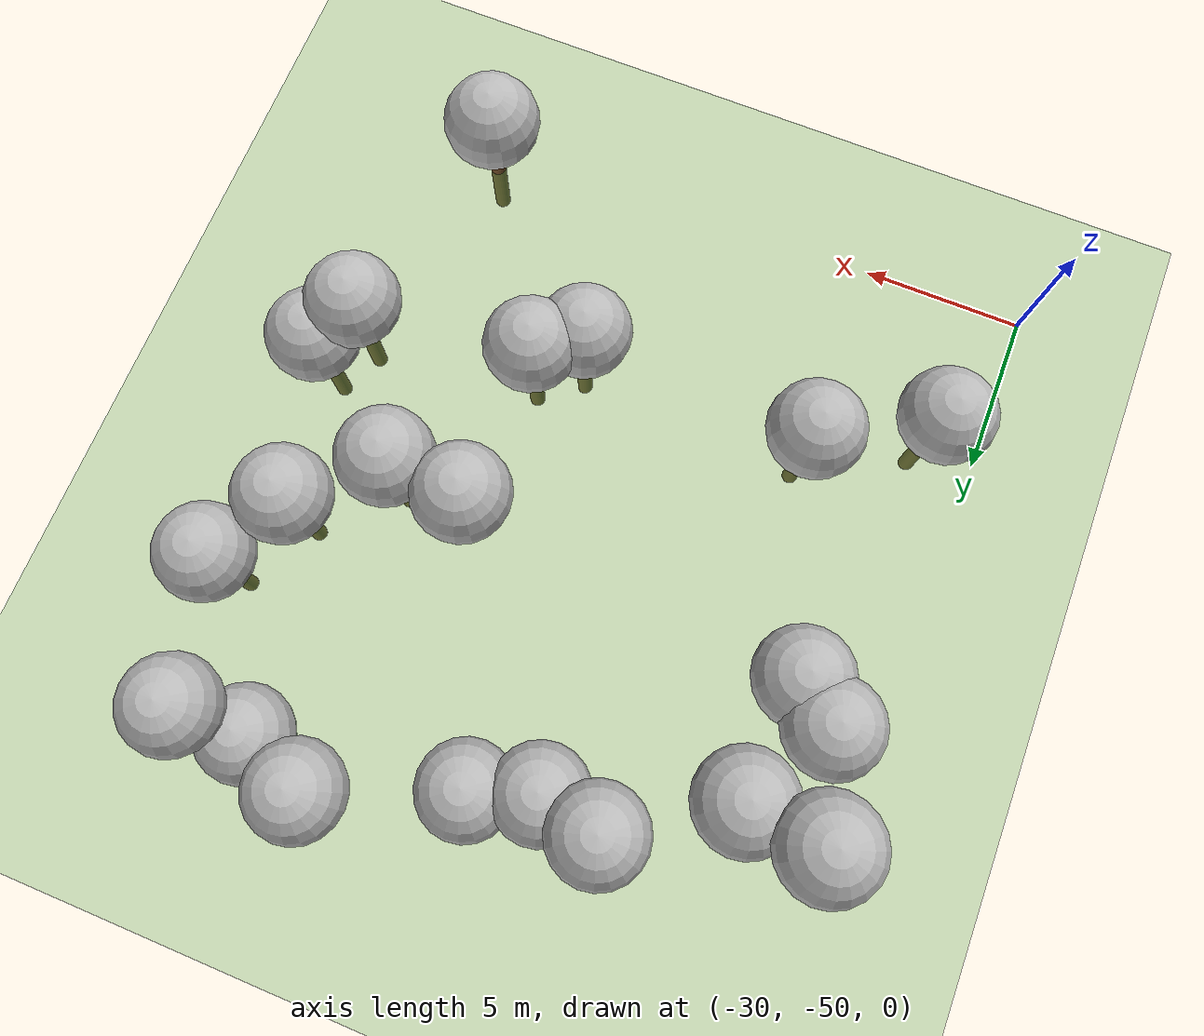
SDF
<sdf version="1.7">
 <world name="default">
  <model name="tree_simple491">
   <static>1</static>
   <link name="link">
    <pose>0 0 0.1 0 -0 0</pose>
    <collision name="collision_trunk">
     <pose>0 0 2 0 -0 0</pose>
     <geometry><cylinder><radius>0.25</radius><length>4</length></cylinder></geometry>
    </collision>
    <collision name="collision_treetop">
     <pose>0 0 5.2 0 -0 0</pose>
     <geometry><sphere><radius>1.5</radius></sphere></geometry>
    </collision>
    <visual name="trunk">
     <pose>0 0 2 0 -0 0</pose>
     <geometry><cylinder><radius>0.25</radius><length>4</length></cylinder></geometry>
     <material>
      <script>
       <uri>model://tree_simple/scripts</uri>
       <uri>model://tree_simple/materials/textures</uri>
       <name>TreeSimple/Trunk</name>
      </script>
     </material>
    </visual>
    <visual name="treetop">
     <pose>0 0 5.2 0 -0 0</pose>
     <geometry><sphere><radius>1.5</radius></sphere></geometry>
     <material>
      <script>
       <uri>model://tree_simple/scripts</uri>
       <uri>model://tree_simple/materials/textures</uri>
       <name>TreeSimple/Treetop</name>
      </script>
     </material>
    </visual>
   </link>
   <pose>-12.3902 -49.1083 -2.42305 0 -0 0</pose>
  </model>
  <model name="tree_simple433">
   <static>1</static>
   <link name="link">
    <pose>0 0 0.1 0 -0 0</pose>
    <collision name="collision_trunk">
     <pose>0 0 2 0 -0 0</pose>
     <geometry><cylinder><radius>0.25</radius><length>4</length></cylinder></geometry>
    </collision>
    <collision name="collision_treetop">
     <pose>0 0 5.2 0 -0 0</pose>
     <geometry><sphere><radius>1.5</radius></sphere></geometry>
    </collision>
    <visual name="trunk">
     <pose>0 0 2 0 -0 0</pose>
     <geometry><cylinder><radius>0.25</radius><length>4</length></cylinder></geometry>
     <material>
      <script>
       <uri>model://tree_simple/scripts</uri>
       <uri>model://tree_simple/materials/textures</uri>
       <name>TreeSimple/Trunk</name>
      </script>
     </material>
    </visual>
    <visual name="treetop">
     <pose>0 0 5.2 0 -0 0</pose>
     <geometry><sphere><radius>1.5</radius></sphere></geometry>
     <material>
      <script>
       <uri>model://tree_simple/scripts</uri>
       <uri>model://tree_simple/materials/textures</uri>
       <name>TreeSimple/Treetop</name>
      </script>
     </material>
    </visual>
   </link>
   <pose>-27.0164 -36.6076 -3.02726 0 -0 0</pose>
  </model>
  <model name="tree_simple408">
   <static>1</static>
   <link name="link">
    <pose>0 0 0.1 0 -0 0</pose>
    <collision name="collision_trunk">
     <pose>0 0 2 0 -0 0</pose>
     <geometry><cylinder><radius>0.25</radius><length>4</length></cylinder></geometry>
    </collision>
    <collision name="collision_treetop">
     <pose>0 0 5.2 0 -0 0</pose>
     <geometry><sphere><radius>1.5</radius></sphere></geometry>
    </collision>
    <visual name="trunk">
     <pose>0 0 2 0 -0 0</pose>
     <geometry><cylinder><radius>0.25</radius><length>4</length></cylinder></geometry>
     <material>
      <script>
       <uri>model://tree_simple/scripts</uri>
       <uri>model://tree_simple/materials/textures</uri>
       <name>TreeSimple/Trunk</name>
      </script>
     </material>
    </visual>
    <visual name="treetop">
     <pose>0 0 5.2 0 -0 0</pose>
     <geometry><sphere><radius>1.5</radius></sphere></geometry>
     <material>
      <script>
       <uri>model://tree_simple/scripts</uri>
       <uri>model://tree_simple/materials/textures</uri>
       <name>TreeSimple/Treetop</name>
      </script>
     </material>
    </visual>
   </link>
   <pose>-16.0994 -43.1532 -3.70688 0 -0 0</pose>
  </model>
  <model name="tree_simple397">
   <static>1</static>
   <link name="link">
    <pose>0 0 0.1 0 -0 0</pose>
    <collision name="collision_trunk">
     <pose>0 0 2 0 -0 0</pose>
     <geometry><cylinder><radius>0.25</radius><length>4</length></cylinder></geometry>
    </collision>
    <collision name="collision_treetop">
     <pose>0 0 5.2 0 -0 0</pose>
     <geometry><sphere><radius>1.5</radius></sphere></geometry>
    </collision>
    <visual name="trunk">
     <pose>0 0 2 0 -0 0</pose>
     <geometry><cylinder><radius>0.25</radius><length>4</length></cylinder></geometry>
     <material>
      <script>
       <uri>model://tree_simple/scripts</uri>
       <uri>model://tree_simple/materials/textures</uri>
       <name>TreeSimple/Trunk</name>
      </script>
     </material>
    </visual>
    <visual name="treetop">
     <pose>0 0 5.2 0 -0 0</pose>
     <geometry><sphere><radius>1.5</radius></sphere></geometry>
     <material>
      <script>
       <uri>model://tree_simple/scripts</uri>
       <uri>model://tree_simple/materials/textures</uri>
       <name>TreeSimple/Treetop</name>
      </script>
     </material>
    </visual>
   </link>
   <pose>-11.3371 -35.9987 -3.01641 0 -0 0</pose>
  </model>
  <model name="tree_simple382">
   <static>1</static>
   <link name="link">
    <pose>0 0 0.1 0 -0 0</pose>
    <collision name="collision_trunk">
     <pose>0 0 2 0 -0 0</pose>
     <geometry><cylinder><radius>0.25</radius><length>4</length></cylinder></geometry>
    </collision>
    <collision name="collision_treetop">
     <pose>0 0 5.2 0 -0 0</pose>
     <geometry><sphere><radius>1.5</radius></sphere></geometry>
    </collision>
    <visual name="trunk">
     <pose>0 0 2 0 -0 0</pose>
     <geometry><cylinder><radius>0.25</radius><length>4</length></cylinder></geometry>
     <material>
      <script>
       <uri>model://tree_simple/scripts</uri>
       <uri>model://tree_simple/materials/textures</uri>
       <name>TreeSimple/Trunk</name>
      </script>
     </material>
    </visual>
    <visual name="treetop">
     <pose>0 0 5.2 0 -0 0</pose>
     <geometry><sphere><radius>1.5</radius></sphere></geometry>
     <material>
      <script>
       <uri>model://tree_simple/scripts</uri>
       <uri>model://tree_simple/materials/textures</uri>
       <name>TreeSimple/Treetop</name>
      </script>
     </material>
    </visual>
   </link>
   <pose>-13.734 -38.0385 -2.58728 0 -0 0</pose>
  </model>
  <model name="tree_simple371">
   <static>1</static>
   <link name="link">
    <pose>0 0 0.1 0 -0 0</pose>
    <collision name="collision_trunk">
     <pose>0 0 2 0 -0 0</pose>
     <geometry><cylinder><radius>0.25</radius><length>4</length></cylinder></geometry>
    </collision>
    <collision name="collision_treetop">
     <pose>0 0 5.2 0 -0 0</pose>
     <geometry><sphere><radius>1.5</radius></sphere></geometry>
    </collision>
    <visual name="trunk">
     <pose>0 0 2 0 -0 0</pose>
     <geometry><cylinder><radius>0.25</radius><length>4</length></cylinder></geometry>
     <material>
      <script>
       <uri>model://tree_simple/scripts</uri>
       <uri>model://tree_simple/materials/textures</uri>
       <name>TreeSimple/Trunk</name>
      </script>
     </material>
    </visual>
    <visual name="treetop">
     <pose>0 0 5.2 0 -0 0</pose>
     <geometry><sphere><radius>1.5</radius></sphere></geometry>
     <material>
      <script>
       <uri>model://tree_simple/scripts</uri>
       <uri>model://tree_simple/materials/textures</uri>
       <name>TreeSimple/Treetop</name>
      </script>
     </material>
    </visual>
   </link>
   <pose>-15.0952 -28.6085 -3.71926 0 -0 0</pose>
  </model>
  <model name="tree_simple357">
   <static>1</static>
   <link name="link">
    <pose>0 0 0.1 0 -0 0</pose>
    <collision name="collision_trunk">
     <pose>0 0 2 0 -0 0</pose>
     <geometry><cylinder><radius>0.25</radius><length>4</length></cylinder></geometry>
    </collision>
    <collision name="collision_treetop">
     <pose>0 0 5.2 0 -0 0</pose>
     <geometry><sphere><radius>1.5</radius></sphere></geometry>
    </collision>
    <visual name="trunk">
     <pose>0 0 2 0 -0 0</pose>
     <geometry><cylinder><radius>0.25</radius><length>4</length></cylinder></geometry>
     <material>
      <script>
       <uri>model://tree_simple/scripts</uri>
       <uri>model://tree_simple/materials/textures</uri>
       <name>TreeSimple/Trunk</name>
      </script>
     </material>
    </visual>
    <visual name="treetop">
     <pose>0 0 5.2 0 -0 0</pose>
     <geometry><sphere><radius>1.5</radius></sphere></geometry>
     <material>
      <script>
       <uri>model://tree_simple/scripts</uri>
       <uri>model://tree_simple/materials/textures</uri>
       <name>TreeSimple/Treetop</name>
      </script>
     </material>
    </visual>
   </link>
   <pose>-28.5405 -45.5661 -3.47704 0 -0 0</pose>
  </model>
  <model name="tree_simple305">
   <static>1</static>
   <link name="link">
    <pose>0 0 0.1 0 -0 0</pose>
    <collision name="collision_trunk">
     <pose>0 0 2 0 -0 0</pose>
     <geometry><cylinder><radius>0.25</radius><length>4</length></cylinder></geometry>
    </collision>
    <collision name="collision_treetop">
     <pose>0 0 5.2 0 -0 0</pose>
     <geometry><sphere><radius>1.5</radius></sphere></geometry>
    </collision>
    <visual name="trunk">
     <pose>0 0 2 0 -0 0</pose>
     <geometry><cylinder><radius>0.25</radius><length>4</length></cylinder></geometry>
     <material>
      <script>
       <uri>model://tree_simple/scripts</uri>
       <uri>model://tree_simple/materials/textures</uri>
       <name>TreeSimple/Trunk</name>
      </script>
     </material>
    </visual>
    <visual name="treetop">
     <pose>0 0 5.2 0 -0 0</pose>
     <geometry><sphere><radius>1.5</radius></sphere></geometry>
     <material>
      <script>
       <uri>model://tree_simple/scripts</uri>
       <uri>model://tree_simple/materials/textures</uri>
       <name>TreeSimple/Treetop</name>
      </script>
     </material>
    </visual>
   </link>
   <pose>-16.225 -37.8227 -2.40107 0 -0 0</pose>
  </model>
  <model name="tree_simple262">
   <static>1</static>
   <link name="link">
    <pose>0 0 0.1 0 -0 0</pose>
    <collision name="collision_trunk">
     <pose>0 0 2 0 -0 0</pose>
     <geometry><cylinder><radius>0.25</radius><length>4</length></cylinder></geometry>
    </collision>
    <collision name="collision_treetop">
     <pose>0 0 5.2 0 -0 0</pose>
     <geometry><sphere><radius>1.5</radius></sphere></geometry>
    </collision>
    <visual name="trunk">
     <pose>0 0 2 0 -0 0</pose>
     <geometry><cylinder><radius>0.25</radius><length>4</length></cylinder></geometry>
     <material>
      <script>
       <uri>model://tree_simple/scripts</uri>
       <uri>model://tree_simple/materials/textures</uri>
       <name>TreeSimple/Trunk</name>
      </script>
     </material>
    </visual>
    <visual name="treetop">
     <pose>0 0 5.2 0 -0 0</pose>
     <geometry><sphere><radius>1.5</radius></sphere></geometry>
     <material>
      <script>
       <uri>model://tree_simple/scripts</uri>
       <uri>model://tree_simple/materials/textures</uri>
       <name>TreeSimple/Treetop</name>
      </script>
     </material>
    </visual>
   </link>
   <pose>-23.2561 -30.6191 -3.21927 0 -0 0</pose>
  </model>
  <model name="tree_simple257">
   <static>1</static>
   <link name="link">
    <pose>0 0 0.1 0 -0 0</pose>
    <collision name="collision_trunk">
     <pose>0 0 2 0 -0 0</pose>
     <geometry><cylinder><radius>0.25</radius><length>4</length></cylinder></geometry>
    </collision>
    <collision name="collision_treetop">
     <pose>0 0 5.2 0 -0 0</pose>
     <geometry><sphere><radius>1.5</radius></sphere></geometry>
    </collision>
    <visual name="trunk">
     <pose>0 0 2 0 -0 0</pose>
     <geometry><cylinder><radius>0.25</radius><length>4</length></cylinder></geometry>
     <material>
      <script>
       <uri>model://tree_simple/scripts</uri>
       <uri>model://tree_simple/materials/textures</uri>
       <name>TreeSimple/Trunk</name>
      </script>
     </material>
    </visual>
    <visual name="treetop">
     <pose>0 0 5.2 0 -0 0</pose>
     <geometry><sphere><radius>1.5</radius></sphere></geometry>
     <material>
      <script>
       <uri>model://tree_simple/scripts</uri>
       <uri>model://tree_simple/materials/textures</uri>
       <name>TreeSimple/Treetop</name>
      </script>
     </material>
    </visual>
   </link>
   <pose>-17.4077 -44.2765 -4.02978 0 -0 0</pose>
  </model>
  <model name="tree_simple227">
   <static>1</static>
   <link name="link">
    <pose>0 0 0.1 0 -0 0</pose>
    <collision name="collision_trunk">
     <pose>0 0 2 0 -0 0</pose>
     <geometry><cylinder><radius>0.25</radius><length>4</length></cylinder></geometry>
    </collision>
    <collision name="collision_treetop">
     <pose>0 0 5.2 0 -0 0</pose>
     <geometry><sphere><radius>1.5</radius></sphere></geometry>
    </collision>
    <visual name="trunk">
     <pose>0 0 2 0 -0 0</pose>
     <geometry><cylinder><radius>0.25</radius><length>4</length></cylinder></geometry>
     <material>
      <script>
       <uri>model://tree_simple/scripts</uri>
       <uri>model://tree_simple/materials/textures</uri>
       <name>TreeSimple/Trunk</name>
      </script>
     </material>
    </visual>
    <visual name="treetop">
     <pose>0 0 5.2 0 -0 0</pose>
     <geometry><sphere><radius>1.5</radius></sphere></geometry>
     <material>
      <script>
       <uri>model://tree_simple/scripts</uri>
       <uri>model://tree_simple/materials/textures</uri>
       <name>TreeSimple/Treetop</name>
      </script>
     </material>
    </visual>
   </link>
   <pose>-10.5932 -42.325 -3.24332 0 -0 0</pose>
  </model>
  <model name="tree_simple198">
   <static>1</static>
   <link name="link">
    <pose>0 0 0.1 0 -0 0</pose>
    <collision name="collision_trunk">
     <pose>0 0 2 0 -0 0</pose>
     <geometry><cylinder><radius>0.25</radius><length>4</length></cylinder></geometry>
    </collision>
    <collision name="collision_treetop">
     <pose>0 0 5.2 0 -0 0</pose>
     <geometry><sphere><radius>1.5</radius></sphere></geometry>
    </collision>
    <visual name="trunk">
     <pose>0 0 2 0 -0 0</pose>
     <geometry><cylinder><radius>0.25</radius><length>4</length></cylinder></geometry>
     <material>
      <script>
       <uri>model://tree_simple/scripts</uri>
       <uri>model://tree_simple/materials/textures</uri>
       <name>TreeSimple/Trunk</name>
      </script>
     </material>
    </visual>
    <visual name="treetop">
     <pose>0 0 5.2 0 -0 0</pose>
     <geometry><sphere><radius>1.5</radius></sphere></geometry>
     <material>
      <script>
       <uri>model://tree_simple/scripts</uri>
       <uri>model://tree_simple/materials/textures</uri>
       <name>TreeSimple/Treetop</name>
      </script>
     </material>
    </visual>
   </link>
   <pose>-28.1666 -35.6026 -2.78413 0 -0 0</pose>
  </model>
  <model name="tree_simple166">
   <static>1</static>
   <link name="link">
    <pose>0 0 0.1 0 -0 0</pose>
    <collision name="collision_trunk">
     <pose>0 0 2 0 -0 0</pose>
     <geometry><cylinder><radius>0.25</radius><length>4</length></cylinder></geometry>
    </collision>
    <collision name="collision_treetop">
     <pose>0 0 5.2 0 -0 0</pose>
     <geometry><sphere><radius>1.5</radius></sphere></geometry>
    </collision>
    <visual name="trunk">
     <pose>0 0 2 0 -0 0</pose>
     <geometry><cylinder><radius>0.25</radius><length>4</length></cylinder></geometry>
     <material>
      <script>
       <uri>model://tree_simple/scripts</uri>
       <uri>model://tree_simple/materials/textures</uri>
       <name>TreeSimple/Trunk</name>
      </script>
     </material>
    </visual>
    <visual name="treetop">
     <pose>0 0 5.2 0 -0 0</pose>
     <geometry><sphere><radius>1.5</radius></sphere></geometry>
     <material>
      <script>
       <uri>model://tree_simple/scripts</uri>
       <uri>model://tree_simple/materials/textures</uri>
       <name>TreeSimple/Treetop</name>
      </script>
     </material>
    </visual>
   </link>
   <pose>-19.3382 -30.34 -4.84144 0 -0 0</pose>
  </model>
  <model name="tree_simple152">
   <static>1</static>
   <link name="link">
    <pose>0 0 0.1 0 -0 0</pose>
    <collision name="collision_trunk">
     <pose>0 0 2 0 -0 0</pose>
     <geometry><cylinder><radius>0.25</radius><length>4</length></cylinder></geometry>
    </collision>
    <collision name="collision_treetop">
     <pose>0 0 5.2 0 -0 0</pose>
     <geometry><sphere><radius>1.5</radius></sphere></geometry>
    </collision>
    <visual name="trunk">
     <pose>0 0 2 0 -0 0</pose>
     <geometry><cylinder><radius>0.25</radius><length>4</length></cylinder></geometry>
     <material>
      <script>
       <uri>model://tree_simple/scripts</uri>
       <uri>model://tree_simple/materials/textures</uri>
       <name>TreeSimple/Trunk</name>
      </script>
     </material>
    </visual>
    <visual name="treetop">
     <pose>0 0 5.2 0 -0 0</pose>
     <geometry><sphere><radius>1.5</radius></sphere></geometry>
     <material>
      <script>
       <uri>model://tree_simple/scripts</uri>
       <uri>model://tree_simple/materials/textures</uri>
       <name>TreeSimple/Treetop</name>
      </script>
     </material>
    </visual>
   </link>
   <pose>-12.7269 -29.4125 -5.16844 0 -0 0</pose>
  </model>
  <model name="tree_simple143">
   <static>1</static>
   <link name="link">
    <pose>0 0 0.1 0 -0 0</pose>
    <collision name="collision_trunk">
     <pose>0 0 2 0 -0 0</pose>
     <geometry><cylinder><radius>0.25</radius><length>4</length></cylinder></geometry>
    </collision>
    <collision name="collision_treetop">
     <pose>0 0 5.2 0 -0 0</pose>
     <geometry><sphere><radius>1.5</radius></sphere></geometry>
    </collision>
    <visual name="trunk">
     <pose>0 0 2 0 -0 0</pose>
     <geometry><cylinder><radius>0.25</radius><length>4</length></cylinder></geometry>
     <material>
      <script>
       <uri>model://tree_simple/scripts</uri>
       <uri>model://tree_simple/materials/textures</uri>
       <name>TreeSimple/Trunk</name>
      </script>
     </material>
    </visual>
    <visual name="treetop">
     <pose>0 0 5.2 0 -0 0</pose>
     <geometry><sphere><radius>1.5</radius></sphere></geometry>
     <material>
      <script>
       <uri>model://tree_simple/scripts</uri>
       <uri>model://tree_simple/materials/textures</uri>
       <name>TreeSimple/Treetop</name>
      </script>
     </material>
    </visual>
   </link>
   <pose>-9.58958 -41.1661 -4.27288 0 -0 0</pose>
  </model>
  <model name="tree_simple102">
   <static>1</static>
   <link name="link">
    <pose>0 0 0.1 0 -0 0</pose>
    <collision name="collision_trunk">
     <pose>0 0 2 0 -0 0</pose>
     <geometry><cylinder><radius>0.25</radius><length>4</length></cylinder></geometry>
    </collision>
    <collision name="collision_treetop">
     <pose>0 0 5.2 0 -0 0</pose>
     <geometry><sphere><radius>1.5</radius></sphere></geometry>
    </collision>
    <visual name="trunk">
     <pose>0 0 2 0 -0 0</pose>
     <geometry><cylinder><radius>0.25</radius><length>4</length></cylinder></geometry>
     <material>
      <script>
       <uri>model://tree_simple/scripts</uri>
       <uri>model://tree_simple/materials/textures</uri>
       <name>TreeSimple/Trunk</name>
      </script>
     </material>
    </visual>
    <visual name="treetop">
     <pose>0 0 5.2 0 -0 0</pose>
     <geometry><sphere><radius>1.5</radius></sphere></geometry>
     <material>
      <script>
       <uri>model://tree_simple/scripts</uri>
       <uri>model://tree_simple/materials/textures</uri>
       <name>TreeSimple/Treetop</name>
      </script>
     </material>
    </visual>
   </link>
   <pose>-9.7787 -33.6944 -3.66029 0 -0 0</pose>
  </model>
  <model name="tree_simple50">
   <static>1</static>
   <link name="link">
    <pose>0 0 0.1 0 -0 0</pose>
    <collision name="collision_trunk">
     <pose>0 0 2 0 -0 0</pose>
     <geometry><cylinder><radius>0.25</radius><length>4</length></cylinder></geometry>
    </collision>
    <collision name="collision_treetop">
     <pose>0 0 5.2 0 -0 0</pose>
     <geometry><sphere><radius>1.5</radius></sphere></geometry>
    </collision>
    <visual name="trunk">
     <pose>0 0 2 0 -0 0</pose>
     <geometry><cylinder><radius>0.25</radius><length>4</length></cylinder></geometry>
     <material>
      <script>
       <uri>model://tree_simple/scripts</uri>
       <uri>model://tree_simple/materials/textures</uri>
       <name>TreeSimple/Trunk</name>
      </script>
     </material>
    </visual>
    <visual name="treetop">
     <pose>0 0 5.2 0 -0 0</pose>
     <geometry><sphere><radius>1.5</radius></sphere></geometry>
     <material>
      <script>
       <uri>model://tree_simple/scripts</uri>
       <uri>model://tree_simple/materials/textures</uri>
       <name>TreeSimple/Treetop</name>
      </script>
     </material>
    </visual>
   </link>
   <pose>-11.0023 -29.4422 -3.26072 0 -0 0</pose>
  </model>
  <model name="tree_simple35">
   <static>1</static>
   <link name="link">
    <pose>0 0 0.1 0 -0 0</pose>
    <collision name="collision_trunk">
     <pose>0 0 2 0 -0 0</pose>
     <geometry><cylinder><radius>0.25</radius><length>4</length></cylinder></geometry>
    </collision>
    <collision name="collision_treetop">
     <pose>0 0 5.2 0 -0 0</pose>
     <geometry><sphere><radius>1.5</radius></sphere></geometry>
    </collision>
    <visual name="trunk">
     <pose>0 0 2 0 -0 0</pose>
     <geometry><cylinder><radius>0.25</radius><length>4</length></cylinder></geometry>
     <material>
      <script>
       <uri>model://tree_simple/scripts</uri>
       <uri>model://tree_simple/materials/textures</uri>
       <name>TreeSimple/Trunk</name>
      </script>
     </material>
    </visual>
    <visual name="treetop">
     <pose>0 0 5.2 0 -0 0</pose>
     <geometry><sphere><radius>1.5</radius></sphere></geometry>
     <material>
      <script>
       <uri>model://tree_simple/scripts</uri>
       <uri>model://tree_simple/materials/textures</uri>
       <name>TreeSimple/Treetop</name>
      </script>
     </material>
    </visual>
   </link>
   <pose>-26.5219 -32.828 -1.79051 0 -0 0</pose>
  </model>
  <model name="tree_simple27">
   <static>1</static>
   <link name="link">
    <pose>0 0 0.1 0 -0 0</pose>
    <collision name="collision_trunk">
     <pose>0 0 2 0 -0 0</pose>
     <geometry><cylinder><radius>0.25</radius><length>4</length></cylinder></geometry>
    </collision>
    <collision name="collision_treetop">
     <pose>0 0 5.2 0 -0 0</pose>
     <geometry><sphere><radius>1.5</radius></sphere></geometry>
    </collision>
    <visual name="trunk">
     <pose>0 0 2 0 -0 0</pose>
     <geometry><cylinder><radius>0.25</radius><length>4</length></cylinder></geometry>
     <material>
      <script>
       <uri>model://tree_simple/scripts</uri>
       <uri>model://tree_simple/materials/textures</uri>
       <name>TreeSimple/Trunk</name>
      </script>
     </material>
    </visual>
    <visual name="treetop">
     <pose>0 0 5.2 0 -0 0</pose>
     <geometry><sphere><radius>1.5</radius></sphere></geometry>
     <material>
      <script>
       <uri>model://tree_simple/scripts</uri>
       <uri>model://tree_simple/materials/textures</uri>
       <name>TreeSimple/Treetop</name>
      </script>
     </material>
    </visual>
   </link>
   <pose>-28.7264 -32.4988 -0.762702 0 -0 0</pose>
  </model>
  <model name="tree_simple26">
   <static>1</static>
   <link name="link">
    <pose>0 0 0.1 0 -0 0</pose>
    <collision name="collision_trunk">
     <pose>0 0 2 0 -0 0</pose>
     <geometry><cylinder><radius>0.25</radius><length>4</length></cylinder></geometry>
    </collision>
    <collision name="collision_treetop">
     <pose>0 0 5.2 0 -0 0</pose>
     <geometry><sphere><radius>1.5</radius></sphere></geometry>
    </collision>
    <visual name="trunk">
     <pose>0 0 2 0 -0 0</pose>
     <geometry><cylinder><radius>0.25</radius><length>4</length></cylinder></geometry>
     <material>
      <script>
       <uri>model://tree_simple/scripts</uri>
       <uri>model://tree_simple/materials/textures</uri>
       <name>TreeSimple/Trunk</name>
      </script>
     </material>
    </visual>
    <visual name="treetop">
     <pose>0 0 5.2 0 -0 0</pose>
     <geometry><sphere><radius>1.5</radius></sphere></geometry>
     <material>
      <script>
       <uri>model://tree_simple/scripts</uri>
       <uri>model://tree_simple/materials/textures</uri>
       <name>TreeSimple/Treetop</name>
      </script>
     </material>
    </visual>
   </link>
   <pose>-25.0092 -43.4681 -2.76163 0 -0 0</pose>
  </model>
  <model name="tree_simple0">
   <static>1</static>
   <link name="link">
    <pose>0 0 0.1 0 -0 0</pose>
    <collision name="collision_trunk">
     <pose>0 0 2 0 -0 0</pose>
     <geometry><cylinder><radius>0.25</radius><length>4</length></cylinder></geometry>
    </collision>
    <collision name="collision_treetop">
     <pose>0 0 5.2 0 -0 0</pose>
     <geometry><sphere><radius>1.5</radius></sphere></geometry>
    </collision>
    <visual name="trunk">
     <pose>0 0 2 0 -0 0</pose>
     <geometry><cylinder><radius>0.25</radius><length>4</length></cylinder></geometry>
     <material>
      <script>
       <uri>model://tree_simple/scripts</uri>
       <uri>model://tree_simple/materials/textures</uri>
       <name>TreeSimple/Trunk</name>
      </script>
     </material>
    </visual>
    <visual name="treetop">
     <pose>0 0 5.2 0 -0 0</pose>
     <geometry><sphere><radius>1.5</radius></sphere></geometry>
     <material>
      <script>
       <uri>model://tree_simple/scripts</uri>
       <uri>model://tree_simple/materials/textures</uri>
       <name>TreeSimple/Treetop</name>
      </script>
     </material>
    </visual>
   </link>
   <pose>-21.3715 -31.0269 -4.38574 0 -0 0</pose>
  </model>
  <model name="ground_plane">
   <static>1</static>
   <link name="link">
    <collision name="collision">
     <geometry><plane><normal>0 0 1</normal><size>250 250</size></plane></geometry>
     <surface><friction><ode><mu>1</mu><mu2>1</mu2></ode></friction></surface>
    </collision>
    <visual name="grass">
     <cast_shadows>0</cast_shadows>
     <geometry><plane><normal>0 0 1</normal><size>150 250</size></plane></geometry>
     <material>
      <script><uri>file://media/materials/scripts/Gazebo.material</uri><name>Gazebo/Grass</name></script>
     </material>
    </visual>
   </link>
  </model>
 </world>
</sdf>
